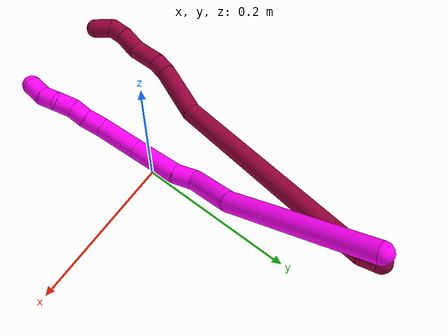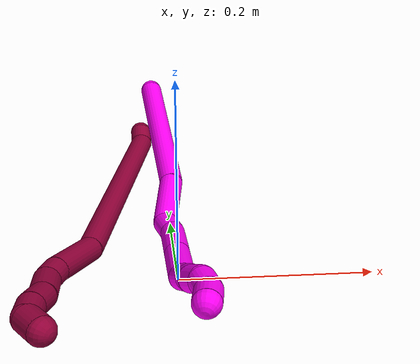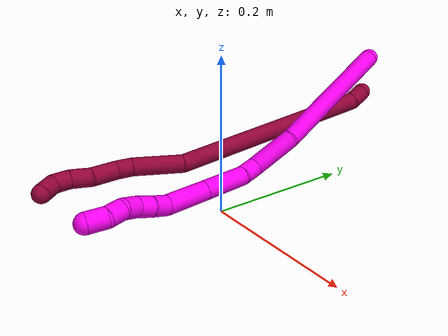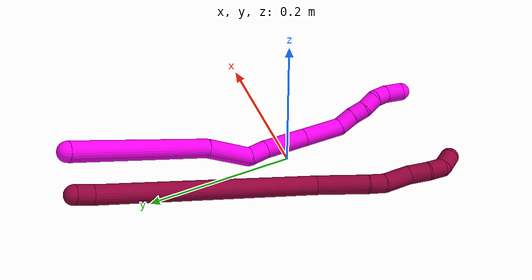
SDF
<sdf version="1.7">
 <world name="default">
  <model name="8">
   <static>0</static>
   <link name="8">
    <collision name="collision-cylinder-e_1_1_4">
     <pose>0.001775 -0.00867 0.007551 0.854303 0.153137 0.069813</pose>
     <geometry><cylinder><radius>0.0125</radius><length>0.023267</length></cylinder></geometry>
     <surface>
      <friction><ode><mu>1.16</mu><mu2>1.16</mu2><slip1>0</slip1><slip2>0</slip2></ode></friction>
      <contact><ode><kp>1e+06</kp><kd>1</kd><max_vel>0</max_vel><min_depth>0.001</min_depth></ode></contact>
     </surface>
    </collision>
    <visual name="visual-cylinder-e_1_1_4">
     <pose>0.001775 -0.00867 0.007551 0.854303 0.153137 0.069813</pose>
     <geometry><cylinder><radius>0.0125</radius><length>0.023267</length></cylinder></geometry>
     <material><ambient>0.584314 0 0.227451 1</ambient></material>
    </visual>
    <collision name="collision-cylinder-e_2_4_5">
     <pose>-0.017949 -0.136487 0.083644 1.04875 -0.155142 -0.089852</pose>
     <geometry><cylinder><radius>0.0125</radius><length>0.278253</length></cylinder></geometry>
     <surface>
      <friction><ode><mu>1.16</mu><mu2>1.16</mu2><slip1>0</slip1><slip2>0</slip2></ode></friction>
      <contact><ode><kp>1e+06</kp><kd>1</kd><max_vel>0</max_vel><min_depth>0.001</min_depth></ode></contact>
     </surface>
    </collision>
    <visual name="visual-cylinder-e_2_4_5">
     <pose>-0.017949 -0.136487 0.083644 1.04875 -0.155142 -0.089852</pose>
     <geometry><cylinder><radius>0.0125</radius><length>0.278253</length></cylinder></geometry>
     <material><ambient>0.584314 0 0.227451 1</ambient></material>
    </visual>
    <collision name="collision-cylinder-e_3_5_6">
     <pose>-0.0517 -0.286045 0.161585 1.27108 -0.367462 -0.272447</pose>
     <geometry><cylinder><radius>0.0125</radius><length>0.068215</length></cylinder></geometry>
     <surface>
      <friction><ode><mu>1.16</mu><mu2>1.16</mu2><slip1>0</slip1><slip2>0</slip2></ode></friction>
      <contact><ode><kp>1e+06</kp><kd>1</kd><max_vel>0</max_vel><min_depth>0.001</min_depth></ode></contact>
     </surface>
    </collision>
    <visual name="visual-cylinder-e_3_5_6">
     <pose>-0.0517 -0.286045 0.161585 1.27108 -0.367462 -0.272447</pose>
     <geometry><cylinder><radius>0.0125</radius><length>0.068215</length></cylinder></geometry>
     <material><ambient>0.584314 0 0.227451 1</ambient></material>
    </visual>
    <collision name="collision-cylinder-e_4_6_7">
     <pose>-0.06694 -0.325784 0.175335 1.13419 -0.282498 -0.18063</pose>
     <geometry><cylinder><radius>0.0125</radius><length>0.021435</length></cylinder></geometry>
     <surface>
      <friction><ode><mu>1.16</mu><mu2>1.16</mu2><slip1>0</slip1><slip2>0</slip2></ode></friction>
      <contact><ode><kp>1e+06</kp><kd>1</kd><max_vel>0</max_vel><min_depth>0.001</min_depth></ode></contact>
     </surface>
    </collision>
    <visual name="visual-cylinder-e_4_6_7">
     <pose>-0.06694 -0.325784 0.175335 1.13419 -0.282498 -0.18063</pose>
     <geometry><cylinder><radius>0.0125</radius><length>0.021435</length></cylinder></geometry>
     <material><ambient>0.584314 0 0.227451 1</ambient></material>
    </visual>
    <collision name="collision-cylinder-e_5_7_8">
     <pose>-0.075584 -0.347715 0.191112 0.834453 -0.321008 -0.143276</pose>
     <geometry><cylinder><radius>0.0125</radius><length>0.035852</length></cylinder></geometry>
     <surface>
      <friction><ode><mu>1.16</mu><mu2>1.16</mu2><slip1>0</slip1><slip2>0</slip2></ode></friction>
      <contact><ode><kp>1e+06</kp><kd>1</kd><max_vel>0</max_vel><min_depth>0.001</min_depth></ode></contact>
     </surface>
    </collision>
    <visual name="visual-cylinder-e_5_7_8">
     <pose>-0.075584 -0.347715 0.191112 0.834453 -0.321008 -0.143276</pose>
     <geometry><cylinder><radius>0.0125</radius><length>0.035852</length></cylinder></geometry>
     <material><ambient>0.584314 0 0.227451 1</ambient></material>
    </visual>
    <collision name="collision-cylinder-e_6_8_9">
     <pose>-0.086805 -0.37129 0.208366 1.08231 -0.421112 -0.255496</pose>
     <geometry><cylinder><radius>0.0125</radius><length>0.027228</length></cylinder></geometry>
     <surface>
      <friction><ode><mu>1.16</mu><mu2>1.16</mu2><slip1>0</slip1><slip2>0</slip2></ode></friction>
      <contact><ode><kp>1e+06</kp><kd>1</kd><max_vel>0</max_vel><min_depth>0.001</min_depth></ode></contact>
     </surface>
    </collision>
    <visual name="visual-cylinder-e_6_8_9">
     <pose>-0.086805 -0.37129 0.208366 1.08231 -0.421112 -0.255496</pose>
     <geometry><cylinder><radius>0.0125</radius><length>0.027228</length></cylinder></geometry>
     <material><ambient>0.584314 0 0.227451 1</ambient></material>
    </visual>
    <collision name="collision-cylinder-e_7_9_10">
     <pose>-0.095435 -0.390295 0.220738 0.887508 -0.287678 -0.137489</pose>
     <geometry><cylinder><radius>0.0125</radius><length>0.021608</length></cylinder></geometry>
     <surface>
      <friction><ode><mu>1.16</mu><mu2>1.16</mu2><slip1>0</slip1><slip2>0</slip2></ode></friction>
      <contact><ode><kp>1e+06</kp><kd>1</kd><max_vel>0</max_vel><min_depth>0.001</min_depth></ode></contact>
     </surface>
    </collision>
    <visual name="visual-cylinder-e_7_9_10">
     <pose>-0.095435 -0.390295 0.220738 0.887508 -0.287678 -0.137489</pose>
     <geometry><cylinder><radius>0.0125</radius><length>0.021608</length></cylinder></geometry>
     <material><ambient>0.584314 0 0.227451 1</ambient></material>
    </visual>
    <collision name="collision-cylinder-e_8_10_2">
     <pose>-0.100216 -0.401379 0.238831 0.258121 -0.142591 -0.018537</pose>
     <geometry><cylinder><radius>0.0125</radius><length>0.024142</length></cylinder></geometry>
     <surface>
      <friction><ode><mu>1.16</mu><mu2>1.16</mu2><slip1>0</slip1><slip2>0</slip2></ode></friction>
      <contact><ode><kp>1e+06</kp><kd>1</kd><max_vel>0</max_vel><min_depth>0.001</min_depth></ode></contact>
     </surface>
    </collision>
    <visual name="visual-cylinder-e_8_10_2">
     <pose>-0.100216 -0.401379 0.238831 0.258121 -0.142591 -0.018537</pose>
     <geometry><cylinder><radius>0.0125</radius><length>0.024142</length></cylinder></geometry>
     <material><ambient>0.584314 0 0.227451 1</ambient></material>
    </visual>
    <collision name="collision-sphere-2">
     <pose>-0.101932 -0.404429 0.250384 0 -0 0</pose>
     <geometry><sphere><radius>0.0125</radius></sphere></geometry>
     <surface>
      <friction><ode><mu>1.16</mu><mu2>1.16</mu2><slip1>0</slip1><slip2>0</slip2></ode></friction>
      <contact><ode><kp>1e+06</kp><kd>1</kd><max_vel>0</max_vel><min_depth>0.001</min_depth></ode></contact>
     </surface>
    </collision>
    <visual name="visual-sphere-2">
     <pose>-0.101932 -0.404429 0.250384 0 -0 0</pose>
     <geometry><sphere><radius>0.0125</radius></sphere></geometry>
     <material><ambient>0.584314 0 0.227451 1</ambient></material>
    </visual>
    <collision name="collision-sphere-10">
     <pose>-0.098501 -0.398329 0.227278 0 -0 0</pose>
     <geometry><sphere><radius>0.0125</radius></sphere></geometry>
     <surface>
      <friction><ode><mu>1.16</mu><mu2>1.16</mu2><slip1>0</slip1><slip2>0</slip2></ode></friction>
      <contact><ode><kp>1e+06</kp><kd>1</kd><max_vel>0</max_vel><min_depth>0.001</min_depth></ode></contact>
     </surface>
    </collision>
    <visual name="visual-sphere-10">
     <pose>-0.098501 -0.398329 0.227278 0 -0 0</pose>
     <geometry><sphere><radius>0.0125</radius></sphere></geometry>
     <material><ambient>0.584314 0 0.227451 1</ambient></material>
    </visual>
    <collision name="collision-sphere-9">
     <pose>-0.09237 -0.382261 0.214197 0 -0 0</pose>
     <geometry><sphere><radius>0.0125</radius></sphere></geometry>
     <surface>
      <friction><ode><mu>1.16</mu><mu2>1.16</mu2><slip1>0</slip1><slip2>0</slip2></ode></friction>
      <contact><ode><kp>1e+06</kp><kd>1</kd><max_vel>0</max_vel><min_depth>0.001</min_depth></ode></contact>
     </surface>
    </collision>
    <visual name="visual-sphere-9">
     <pose>-0.09237 -0.382261 0.214197 0 -0 0</pose>
     <geometry><sphere><radius>0.0125</radius></sphere></geometry>
     <material><ambient>0.584314 0 0.227451 1</ambient></material>
    </visual>
    <collision name="collision-sphere-4">
     <pose>0.003549 -0.017341 0.015102 0 -0 0</pose>
     <geometry><sphere><radius>0.0125</radius></sphere></geometry>
     <surface>
      <friction><ode><mu>1.16</mu><mu2>1.16</mu2><slip1>0</slip1><slip2>0</slip2></ode></friction>
      <contact><ode><kp>1e+06</kp><kd>1</kd><max_vel>0</max_vel><min_depth>0.001</min_depth></ode></contact>
     </surface>
    </collision>
    <visual name="visual-sphere-4">
     <pose>0.003549 -0.017341 0.015102 0 -0 0</pose>
     <geometry><sphere><radius>0.0125</radius></sphere></geometry>
     <material><ambient>0.584314 0 0.227451 1</ambient></material>
    </visual>
    <collision name="collision-sphere-1">
     <geometry><sphere><radius>0.0125</radius></sphere></geometry>
     <surface>
      <friction><ode><mu>1.16</mu><mu2>1.16</mu2><slip1>0</slip1><slip2>0</slip2></ode></friction>
      <contact><ode><kp>1e+06</kp><kd>1</kd><max_vel>0</max_vel><min_depth>0.001</min_depth></ode></contact>
     </surface>
    </collision>
    <visual name="visual-sphere-1">
     <geometry><sphere><radius>0.0125</radius></sphere></geometry>
     <material><ambient>0.584314 0 0.227451 1</ambient></material>
    </visual>
    <collision name="collision-sphere-8">
     <pose>-0.08124 -0.360318 0.202536 0 -0 0</pose>
     <geometry><sphere><radius>0.0125</radius></sphere></geometry>
     <surface>
      <friction><ode><mu>1.16</mu><mu2>1.16</mu2><slip1>0</slip1><slip2>0</slip2></ode></friction>
      <contact><ode><kp>1e+06</kp><kd>1</kd><max_vel>0</max_vel><min_depth>0.001</min_depth></ode></contact>
     </surface>
    </collision>
    <visual name="visual-sphere-8">
     <pose>-0.08124 -0.360318 0.202536 0 -0 0</pose>
     <geometry><sphere><radius>0.0125</radius></sphere></geometry>
     <material><ambient>0.584314 0 0.227451 1</ambient></material>
    </visual>
    <collision name="collision-sphere-5">
     <pose>-0.039447 -0.255634 0.152187 0 -0 0</pose>
     <geometry><sphere><radius>0.0125</radius></sphere></geometry>
     <surface>
      <friction><ode><mu>1.16</mu><mu2>1.16</mu2><slip1>0</slip1><slip2>0</slip2></ode></friction>
      <contact><ode><kp>1e+06</kp><kd>1</kd><max_vel>0</max_vel><min_depth>0.001</min_depth></ode></contact>
     </surface>
    </collision>
    <visual name="visual-sphere-5">
     <pose>-0.039447 -0.255634 0.152187 0 -0 0</pose>
     <geometry><sphere><radius>0.0125</radius></sphere></geometry>
     <material><ambient>0.584314 0 0.227451 1</ambient></material>
    </visual>
    <collision name="collision-sphere-6">
     <pose>-0.063953 -0.316457 0.170983 0 -0 0</pose>
     <geometry><sphere><radius>0.0125</radius></sphere></geometry>
     <surface>
      <friction><ode><mu>1.16</mu><mu2>1.16</mu2><slip1>0</slip1><slip2>0</slip2></ode></friction>
      <contact><ode><kp>1e+06</kp><kd>1</kd><max_vel>0</max_vel><min_depth>0.001</min_depth></ode></contact>
     </surface>
    </collision>
    <visual name="visual-sphere-6">
     <pose>-0.063953 -0.316457 0.170983 0 -0 0</pose>
     <geometry><sphere><radius>0.0125</radius></sphere></geometry>
     <material><ambient>0.584314 0 0.227451 1</ambient></material>
    </visual>
    <collision name="collision-sphere-7">
     <pose>-0.069928 -0.335111 0.179688 0 -0 0</pose>
     <geometry><sphere><radius>0.0125</radius></sphere></geometry>
     <surface>
      <friction><ode><mu>1.16</mu><mu2>1.16</mu2><slip1>0</slip1><slip2>0</slip2></ode></friction>
      <contact><ode><kp>1e+06</kp><kd>1</kd><max_vel>0</max_vel><min_depth>0.001</min_depth></ode></contact>
     </surface>
    </collision>
    <visual name="visual-sphere-7">
     <pose>-0.069928 -0.335111 0.179688 0 -0 0</pose>
     <geometry><sphere><radius>0.0125</radius></sphere></geometry>
     <material><ambient>0.584314 0 0.227451 1</ambient></material>
    </visual>
    <inertial>
     <pose>-0.038939 -0.21075 0.122583 0 -0 0</pose>
     <mass>0.5</mass>
     <inertia>
      <ixx>0.001641</ixx>
      <ixy>0</ixy>
      <ixz>0</ixz>
      <iyy>0.000739</iyy>
      <iyz>0</iyz>
      <izz>0.001896</izz>
     </inertia>
    </inertial>
   </link>
   <pose>-0.033158 0.286434 0.101683 2.0576 1.22009 1.33939</pose>
  </model>
  <model name="10">
   <static>0</static>
   <link name="10">
    <collision name="collision-cylinder-e_1_1_4">
     <pose>0.026562 -0.009282 -0.087448 3.03585 0.293331 2.4536</pose>
     <geometry><cylinder><radius>0.0125</radius><length>0.183726</length></cylinder></geometry>
     <surface>
      <friction><ode><mu>1.16</mu><mu2>1.16</mu2><slip1>0</slip1><slip2>0</slip2></ode></friction>
      <contact><ode><kp>1e+06</kp><kd>1</kd><max_vel>0</max_vel><min_depth>0.001</min_depth></ode></contact>
     </surface>
    </collision>
    <visual name="visual-cylinder-e_1_1_4">
     <pose>0.026562 -0.009282 -0.087448 3.03585 0.293331 2.4536</pose>
     <geometry><cylinder><radius>0.0125</radius><length>0.183726</length></cylinder></geometry>
     <material><ambient>1 0 0.964706 1</ambient></material>
    </visual>
    <collision name="collision-cylinder-e_2_4_5">
     <pose>0.055473 -0.018147 -0.206157 -3.12828 0.075012 -2.79052</pose>
     <geometry><cylinder><radius>0.0125</radius><length>0.062704</length></cylinder></geometry>
     <surface>
      <friction><ode><mu>1.16</mu><mu2>1.16</mu2><slip1>0</slip1><slip2>0</slip2></ode></friction>
      <contact><ode><kp>1e+06</kp><kd>1</kd><max_vel>0</max_vel><min_depth>0.001</min_depth></ode></contact>
     </surface>
    </collision>
    <visual name="visual-cylinder-e_2_4_5">
     <pose>0.055473 -0.018147 -0.206157 -3.12828 0.075012 -2.79052</pose>
     <geometry><cylinder><radius>0.0125</radius><length>0.062704</length></cylinder></geometry>
     <material><ambient>1 0 0.964706 1</ambient></material>
    </visual>
    <collision name="collision-cylinder-e_3_5_6">
     <pose>0.062322 -0.023647 -0.248649 2.65679 0.340645 1.21548</pose>
     <geometry><cylinder><radius>0.0125</radius><length>0.026935</length></cylinder></geometry>
     <surface>
      <friction><ode><mu>1.16</mu><mu2>1.16</mu2><slip1>0</slip1><slip2>0</slip2></ode></friction>
      <contact><ode><kp>1e+06</kp><kd>1</kd><max_vel>0</max_vel><min_depth>0.001</min_depth></ode></contact>
     </surface>
    </collision>
    <visual name="visual-cylinder-e_3_5_6">
     <pose>0.062322 -0.023647 -0.248649 2.65679 0.340645 1.21548</pose>
     <geometry><cylinder><radius>0.0125</radius><length>0.026935</length></cylinder></geometry>
     <material><ambient>1 0 0.964706 1</ambient></material>
    </visual>
    <collision name="collision-cylinder-e_4_6_7">
     <pose>0.070025 -0.04357 -0.286049 2.65013 0.107515 0.422694</pose>
     <geometry><cylinder><radius>0.0125</radius><length>0.059711</length></cylinder></geometry>
     <surface>
      <friction><ode><mu>1.16</mu><mu2>1.16</mu2><slip1>0</slip1><slip2>0</slip2></ode></friction>
      <contact><ode><kp>1e+06</kp><kd>1</kd><max_vel>0</max_vel><min_depth>0.001</min_depth></ode></contact>
     </surface>
    </collision>
    <visual name="visual-cylinder-e_4_6_7">
     <pose>0.070025 -0.04357 -0.286049 2.65013 0.107515 0.422694</pose>
     <geometry><cylinder><radius>0.0125</radius><length>0.059711</length></cylinder></geometry>
     <material><ambient>1 0 0.964706 1</ambient></material>
    </visual>
    <collision name="collision-cylinder-e_5_7_8">
     <pose>0.076097 -0.070783 -0.336653 2.64613 0.102936 0.401841</pose>
     <geometry><cylinder><radius>0.0125</radius><length>0.055842</length></cylinder></geometry>
     <surface>
      <friction><ode><mu>1.16</mu><mu2>1.16</mu2><slip1>0</slip1><slip2>0</slip2></ode></friction>
      <contact><ode><kp>1e+06</kp><kd>1</kd><max_vel>0</max_vel><min_depth>0.001</min_depth></ode></contact>
     </surface>
    </collision>
    <visual name="visual-cylinder-e_5_7_8">
     <pose>0.076097 -0.070783 -0.336653 2.64613 0.102936 0.401841</pose>
     <geometry><cylinder><radius>0.0125</radius><length>0.055842</length></cylinder></geometry>
     <material><ambient>1 0 0.964706 1</ambient></material>
    </visual>
    <collision name="collision-cylinder-e_6_8_9">
     <pose>0.080836 -0.093563 -0.368602 2.23624 0.152426 0.311469</pose>
     <geometry><cylinder><radius>0.0125</radius><length>0.024632</length></cylinder></geometry>
     <surface>
      <friction><ode><mu>1.16</mu><mu2>1.16</mu2><slip1>0</slip1><slip2>0</slip2></ode></friction>
      <contact><ode><kp>1e+06</kp><kd>1</kd><max_vel>0</max_vel><min_depth>0.001</min_depth></ode></contact>
     </surface>
    </collision>
    <visual name="visual-cylinder-e_6_8_9">
     <pose>0.080836 -0.093563 -0.368602 2.23624 0.152426 0.311469</pose>
     <geometry><cylinder><radius>0.0125</radius><length>0.024632</length></cylinder></geometry>
     <material><ambient>1 0 0.964706 1</ambient></material>
    </visual>
    <collision name="collision-cylinder-e_7_9_10">
     <pose>0.082749 -0.110614 -0.382971 2.31281 0.004168 0.009474</pose>
     <geometry><cylinder><radius>0.0125</radius><length>0.020282</length></cylinder></geometry>
     <surface>
      <friction><ode><mu>1.16</mu><mu2>1.16</mu2><slip1>0</slip1><slip2>0</slip2></ode></friction>
      <contact><ode><kp>1e+06</kp><kd>1</kd><max_vel>0</max_vel><min_depth>0.001</min_depth></ode></contact>
     </surface>
    </collision>
    <visual name="visual-cylinder-e_7_9_10">
     <pose>0.082749 -0.110614 -0.382971 2.31281 0.004168 0.009474</pose>
     <geometry><cylinder><radius>0.0125</radius><length>0.020282</length></cylinder></geometry>
     <material><ambient>1 0 0.964706 1</ambient></material>
    </visual>
    <collision name="collision-cylinder-e_8_10_11">
     <pose>0.085679 -0.126524 -0.396082 2.20916 0.268373 0.524202</pose>
     <geometry><cylinder><radius>0.0125</radius><length>0.021786</length></cylinder></geometry>
     <surface>
      <friction><ode><mu>1.16</mu><mu2>1.16</mu2><slip1>0</slip1><slip2>0</slip2></ode></friction>
      <contact><ode><kp>1e+06</kp><kd>1</kd><max_vel>0</max_vel><min_depth>0.001</min_depth></ode></contact>
     </surface>
    </collision>
    <visual name="visual-cylinder-e_8_10_11">
     <pose>0.085679 -0.126524 -0.396082 2.20916 0.268373 0.524202</pose>
     <geometry><cylinder><radius>0.0125</radius><length>0.021786</length></cylinder></geometry>
     <material><ambient>1 0 0.964706 1</ambient></material>
    </visual>
    <collision name="collision-cylinder-e_9_11_12">
     <pose>0.091292 -0.139647 -0.410848 2.63791 0.273408 0.981921</pose>
     <geometry><cylinder><radius>0.0125</radius><length>0.020177</length></cylinder></geometry>
     <surface>
      <friction><ode><mu>1.16</mu><mu2>1.16</mu2><slip1>0</slip1><slip2>0</slip2></ode></friction>
      <contact><ode><kp>1e+06</kp><kd>1</kd><max_vel>0</max_vel><min_depth>0.001</min_depth></ode></contact>
     </surface>
    </collision>
    <visual name="visual-cylinder-e_9_11_12">
     <pose>0.091292 -0.139647 -0.410848 2.63791 0.273408 0.981921</pose>
     <geometry><cylinder><radius>0.0125</radius><length>0.020177</length></cylinder></geometry>
     <material><ambient>1 0 0.964706 1</ambient></material>
    </visual>
    <collision name="collision-cylinder-e_10_12_2">
     <pose>0.09331 -0.149595 -0.430233 2.69121 -0.058366 -0.253492</pose>
     <geometry><cylinder><radius>0.0125</radius><length>0.024206</length></cylinder></geometry>
     <surface>
      <friction><ode><mu>1.16</mu><mu2>1.16</mu2><slip1>0</slip1><slip2>0</slip2></ode></friction>
      <contact><ode><kp>1e+06</kp><kd>1</kd><max_vel>0</max_vel><min_depth>0.001</min_depth></ode></contact>
     </surface>
    </collision>
    <visual name="visual-cylinder-e_10_12_2">
     <pose>0.09331 -0.149595 -0.430233 2.69121 -0.058366 -0.253492</pose>
     <geometry><cylinder><radius>0.0125</radius><length>0.024206</length></cylinder></geometry>
     <material><ambient>1 0 0.964706 1</ambient></material>
    </visual>
    <collision name="collision-sphere-2">
     <pose>0.092604 -0.154854 -0.441111 0 -0 0</pose>
     <geometry><sphere><radius>0.0125</radius></sphere></geometry>
     <surface>
      <friction><ode><mu>1.16</mu><mu2>1.16</mu2><slip1>0</slip1><slip2>0</slip2></ode></friction>
      <contact><ode><kp>1e+06</kp><kd>1</kd><max_vel>0</max_vel><min_depth>0.001</min_depth></ode></contact>
     </surface>
    </collision>
    <visual name="visual-sphere-2">
     <pose>0.092604 -0.154854 -0.441111 0 -0 0</pose>
     <geometry><sphere><radius>0.0125</radius></sphere></geometry>
     <material><ambient>1 0 0.964706 1</ambient></material>
    </visual>
    <collision name="collision-sphere-12">
     <pose>0.094016 -0.144335 -0.419356 0 -0 0</pose>
     <geometry><sphere><radius>0.0125</radius></sphere></geometry>
     <surface>
      <friction><ode><mu>1.16</mu><mu2>1.16</mu2><slip1>0</slip1><slip2>0</slip2></ode></friction>
      <contact><ode><kp>1e+06</kp><kd>1</kd><max_vel>0</max_vel><min_depth>0.001</min_depth></ode></contact>
     </surface>
    </collision>
    <visual name="visual-sphere-12">
     <pose>0.094016 -0.144335 -0.419356 0 -0 0</pose>
     <geometry><sphere><radius>0.0125</radius></sphere></geometry>
     <material><ambient>1 0 0.964706 1</ambient></material>
    </visual>
    <collision name="collision-sphere-11">
     <pose>0.088568 -0.134958 -0.402341 0 -0 0</pose>
     <geometry><sphere><radius>0.0125</radius></sphere></geometry>
     <surface>
      <friction><ode><mu>1.16</mu><mu2>1.16</mu2><slip1>0</slip1><slip2>0</slip2></ode></friction>
      <contact><ode><kp>1e+06</kp><kd>1</kd><max_vel>0</max_vel><min_depth>0.001</min_depth></ode></contact>
     </surface>
    </collision>
    <visual name="visual-sphere-11">
     <pose>0.088568 -0.134958 -0.402341 0 -0 0</pose>
     <geometry><sphere><radius>0.0125</radius></sphere></geometry>
     <material><ambient>1 0 0.964706 1</ambient></material>
    </visual>
    <collision name="collision-sphere-10">
     <pose>0.082791 -0.118089 -0.389824 0 -0 0</pose>
     <geometry><sphere><radius>0.0125</radius></sphere></geometry>
     <surface>
      <friction><ode><mu>1.16</mu><mu2>1.16</mu2><slip1>0</slip1><slip2>0</slip2></ode></friction>
      <contact><ode><kp>1e+06</kp><kd>1</kd><max_vel>0</max_vel><min_depth>0.001</min_depth></ode></contact>
     </surface>
    </collision>
    <visual name="visual-sphere-10">
     <pose>0.082791 -0.118089 -0.389824 0 -0 0</pose>
     <geometry><sphere><radius>0.0125</radius></sphere></geometry>
     <material><ambient>1 0 0.964706 1</ambient></material>
    </visual>
    <collision name="collision-sphere-9">
     <pose>0.082706 -0.103139 -0.376118 0 -0 0</pose>
     <geometry><sphere><radius>0.0125</radius></sphere></geometry>
     <surface>
      <friction><ode><mu>1.16</mu><mu2>1.16</mu2><slip1>0</slip1><slip2>0</slip2></ode></friction>
      <contact><ode><kp>1e+06</kp><kd>1</kd><max_vel>0</max_vel><min_depth>0.001</min_depth></ode></contact>
     </surface>
    </collision>
    <visual name="visual-sphere-9">
     <pose>0.082706 -0.103139 -0.376118 0 -0 0</pose>
     <geometry><sphere><radius>0.0125</radius></sphere></geometry>
     <material><ambient>1 0 0.964706 1</ambient></material>
    </visual>
    <collision name="collision-sphere-4">
     <pose>0.053123 -0.018563 -0.174896 0 -0 0</pose>
     <geometry><sphere><radius>0.0125</radius></sphere></geometry>
     <surface>
      <friction><ode><mu>1.16</mu><mu2>1.16</mu2><slip1>0</slip1><slip2>0</slip2></ode></friction>
      <contact><ode><kp>1e+06</kp><kd>1</kd><max_vel>0</max_vel><min_depth>0.001</min_depth></ode></contact>
     </surface>
    </collision>
    <visual name="visual-sphere-4">
     <pose>0.053123 -0.018563 -0.174896 0 -0 0</pose>
     <geometry><sphere><radius>0.0125</radius></sphere></geometry>
     <material><ambient>1 0 0.964706 1</ambient></material>
    </visual>
    <collision name="collision-sphere-1">
     <geometry><sphere><radius>0.0125</radius></sphere></geometry>
     <surface>
      <friction><ode><mu>1.16</mu><mu2>1.16</mu2><slip1>0</slip1><slip2>0</slip2></ode></friction>
      <contact><ode><kp>1e+06</kp><kd>1</kd><max_vel>0</max_vel><min_depth>0.001</min_depth></ode></contact>
     </surface>
    </collision>
    <visual name="visual-sphere-1">
     <geometry><sphere><radius>0.0125</radius></sphere></geometry>
     <material><ambient>1 0 0.964706 1</ambient></material>
    </visual>
    <collision name="collision-sphere-8">
     <pose>0.078966 -0.083987 -0.361086 0 -0 0</pose>
     <geometry><sphere><radius>0.0125</radius></sphere></geometry>
     <surface>
      <friction><ode><mu>1.16</mu><mu2>1.16</mu2><slip1>0</slip1><slip2>0</slip2></ode></friction>
      <contact><ode><kp>1e+06</kp><kd>1</kd><max_vel>0</max_vel><min_depth>0.001</min_depth></ode></contact>
     </surface>
    </collision>
    <visual name="visual-sphere-8">
     <pose>0.078966 -0.083987 -0.361086 0 -0 0</pose>
     <geometry><sphere><radius>0.0125</radius></sphere></geometry>
     <material><ambient>1 0 0.964706 1</ambient></material>
    </visual>
    <collision name="collision-sphere-5">
     <pose>0.057822 -0.017731 -0.237418 0 -0 0</pose>
     <geometry><sphere><radius>0.0125</radius></sphere></geometry>
     <surface>
      <friction><ode><mu>1.16</mu><mu2>1.16</mu2><slip1>0</slip1><slip2>0</slip2></ode></friction>
      <contact><ode><kp>1e+06</kp><kd>1</kd><max_vel>0</max_vel><min_depth>0.001</min_depth></ode></contact>
     </surface>
    </collision>
    <visual name="visual-sphere-5">
     <pose>0.057822 -0.017731 -0.237418 0 -0 0</pose>
     <geometry><sphere><radius>0.0125</radius></sphere></geometry>
     <material><ambient>1 0 0.964706 1</ambient></material>
    </visual>
    <collision name="collision-sphere-6">
     <pose>0.066821 -0.029563 -0.259879 0 -0 0</pose>
     <geometry><sphere><radius>0.0125</radius></sphere></geometry>
     <surface>
      <friction><ode><mu>1.16</mu><mu2>1.16</mu2><slip1>0</slip1><slip2>0</slip2></ode></friction>
      <contact><ode><kp>1e+06</kp><kd>1</kd><max_vel>0</max_vel><min_depth>0.001</min_depth></ode></contact>
     </surface>
    </collision>
    <visual name="visual-sphere-6">
     <pose>0.066821 -0.029563 -0.259879 0 -0 0</pose>
     <geometry><sphere><radius>0.0125</radius></sphere></geometry>
     <material><ambient>1 0 0.964706 1</ambient></material>
    </visual>
    <collision name="collision-sphere-7">
     <pose>0.073228 -0.057578 -0.312219 0 -0 0</pose>
     <geometry><sphere><radius>0.0125</radius></sphere></geometry>
     <surface>
      <friction><ode><mu>1.16</mu><mu2>1.16</mu2><slip1>0</slip1><slip2>0</slip2></ode></friction>
      <contact><ode><kp>1e+06</kp><kd>1</kd><max_vel>0</max_vel><min_depth>0.001</min_depth></ode></contact>
     </surface>
    </collision>
    <visual name="visual-sphere-7">
     <pose>0.073228 -0.057578 -0.312219 0 -0 0</pose>
     <geometry><sphere><radius>0.0125</radius></sphere></geometry>
     <material><ambient>1 0 0.964706 1</ambient></material>
    </visual>
    <inertial>
     <pose>0.056209 -0.047555 -0.2315 0 -0 0</pose>
     <mass>0.5</mass>
     <inertia>
      <ixx>-3e-05</ixx>
      <ixy>0</ixy>
      <ixz>0</ixz>
      <iyy>0.000717</iyy>
      <iyz>0</iyz>
      <izz>-0.000117</izz>
     </inertia>
    </inertial>
   </link>
   <pose>-0.018464 0.277725 0.157403 -1.05531 0.33011 -0.06284</pose>
  </model>
 </world>
</sdf>
